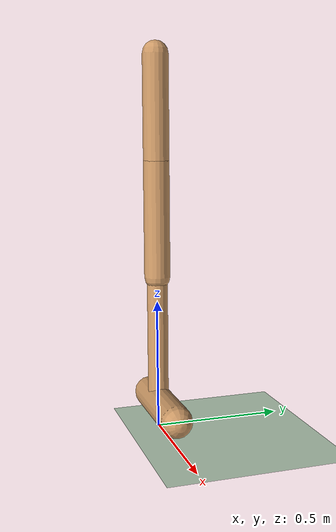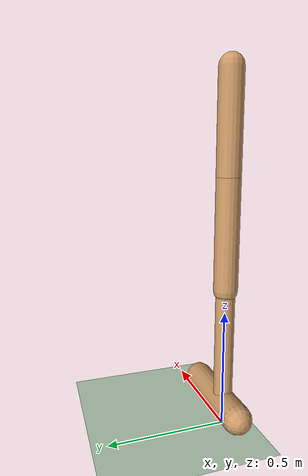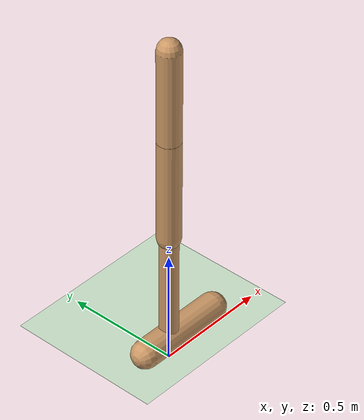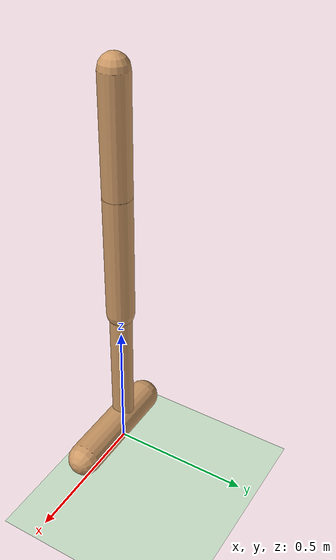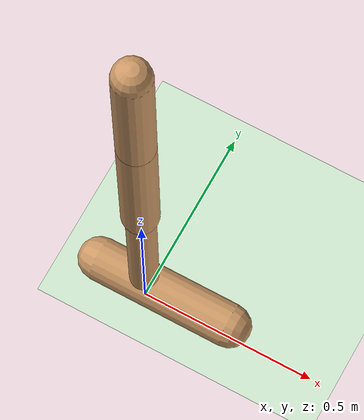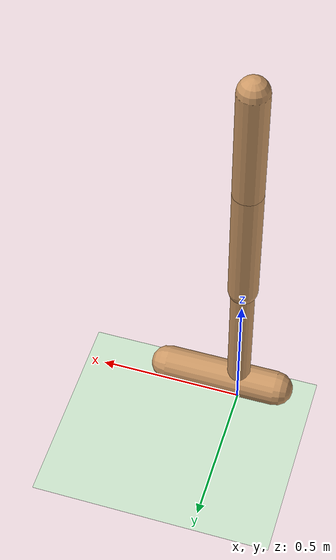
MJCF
<mujoco model="hopper">
    <compiler angle="radian" />
    <option integrator="RK4" />
    <size njmax="500" nconmax="100" />
    <visual>
        <map znear="0.02" />
    </visual>
    <default class="main">
        <joint limited="true" armature="1" damping="1" />
        <geom condim="1" solimp="0.8 0.8 0.01 0.5 2" margin="0.001" material="geom" rgba="0.8 0.6 0.4 1" />
        <general ctrllimited="true" ctrlrange="-0.4 0.4" />
    </default>
    <asset>
        <texture type="skybox" builtin="gradient" rgb1="0.4 0.5 0.6" rgb2="0 0 0" width="100" height="600" />
        <texture type="cube" name="texgeom" builtin="flat" mark="cross" rgb1="0.8 0.6 0.4" rgb2="0.8 0.6 0.4" markrgb="1 1 1" width="127" height="762" />
        <texture type="2d" name="texplane" builtin="checker" rgb1="0 0 0" rgb2="0.8 0.8 0.8" width="100" height="100" />
        <material name="MatPlane" texture="texplane" texrepeat="60 60" specular="1" shininess="1" reflectance="0.5" />
        <material name="geom" texture="texgeom" texuniform="true" />
    </asset>
    <worldbody>
        <geom name="floor" size="20 20 0.125" type="plane" condim="3" material="MatPlane" rgba="0.8 0.9 0.8 1" />
        <light pos="0 0 1.3" dir="0 0 -1" directional="true" cutoff="100" exponent="1" diffuse="1 1 1" specular="0.1 0.1 0.1" />
        <!-- Split root joints into separate bodies (matching dflex structure) -->
        <body name="rootx_body" pos="0 0 0">
            <joint name="rootx" pos="0 0 0" axis="1 0 0" type="slide" limited="false" armature="1" damping="0" stiffness="0" />
            <body name="rootz_body" pos="0 0 0">
                <joint name="rootz" pos="0 0 0" axis="0 0 1" type="slide" ref="1.25" limited="false" armature="1" damping="0" stiffness="0" />
                <body name="torso" pos="0 0 1.25">
                    <joint name="rooty" pos="0 0 0" axis="0 1 0" type="hinge" limited="false" armature="1" damping="0" stiffness="0" />
                    <geom name="torso_geom" size="0.05 0.2" type="capsule" friction="0.9 0.005 0.0001" />
                    <body name="thigh" pos="0 0 -0.2">
                        <joint name="thigh_joint" pos="0 0 0" type="hinge" axis="0 -1 0" range="-2.61799 0" />
                        <geom name="thigh_geom" size="0.05 0.225" pos="0 0 -0.225" type="capsule" friction="0.9 0.005 0.0001" />
                        <body name="leg" pos="0 0 -0.7">
                            <joint name="leg_joint" pos="0 0 0.25" type="hinge" axis="0 -1 0" range="-2.61799 0" />
                            <geom name="leg_geom" size="0.04 0.25" type="capsule" friction="0.9 0.005 0.0001" />
                            <body name="foot" pos="0.0 0 -0.25">
                                <joint name="foot_joint" pos="0 0 0.0" type="hinge" axis="0 -1 0" range="-0.785398 0.785398" />
                                <geom name="foot_geom" size="0.06 0.195" pos="0.06 0 0.0" quat="0.707107 0 -0.707107 0" type="capsule" friction="2 0.005 0.0001" />
                            </body>
                        </body>
                    </body>
                </body>
            </body>
        </body>
    </worldbody>
    <actuator>
        <general joint="thigh_joint" ctrlrange="-1 1" gear="200 0 0 0 0 0" />
        <general joint="leg_joint" ctrlrange="-1 1" gear="200 0 0 0 0 0" />
        <general joint="foot_joint" ctrlrange="-1 1" gear="200 0 0 0 0 0" />
    </actuator>
</mujoco>
